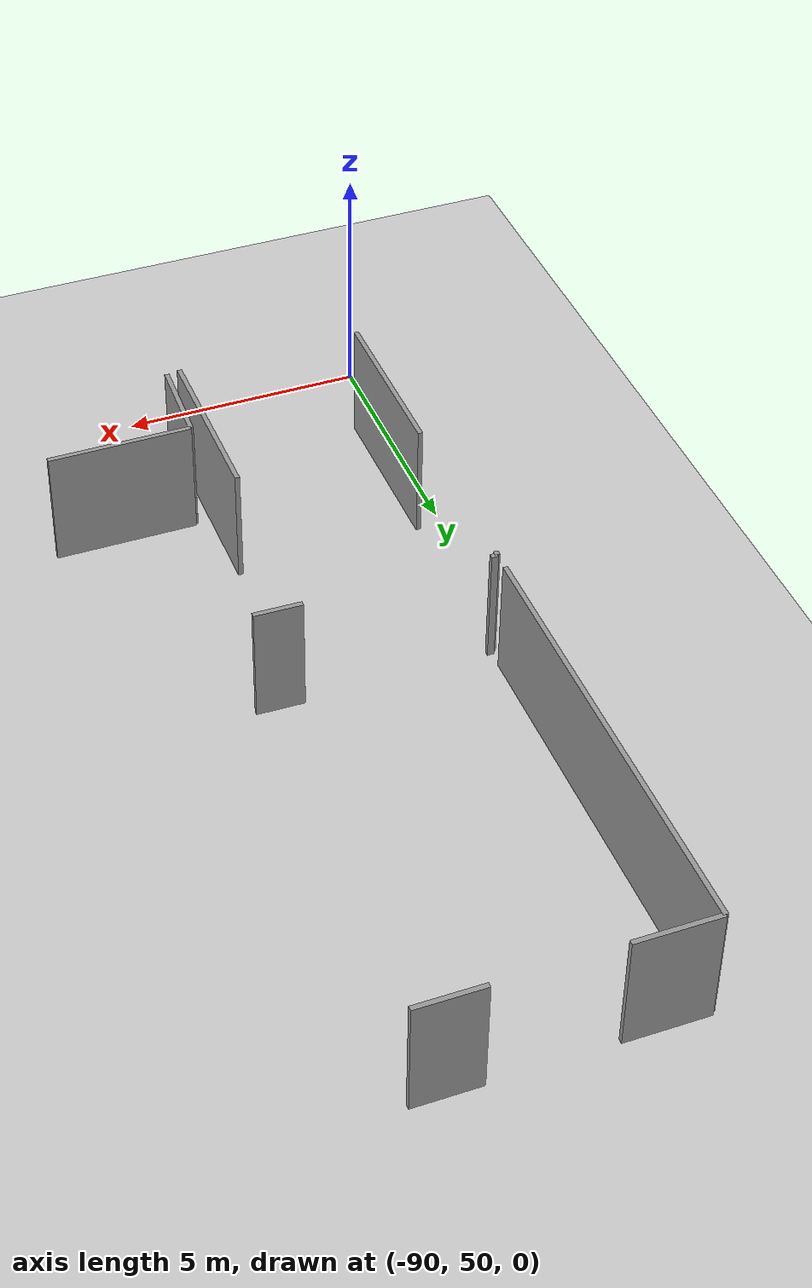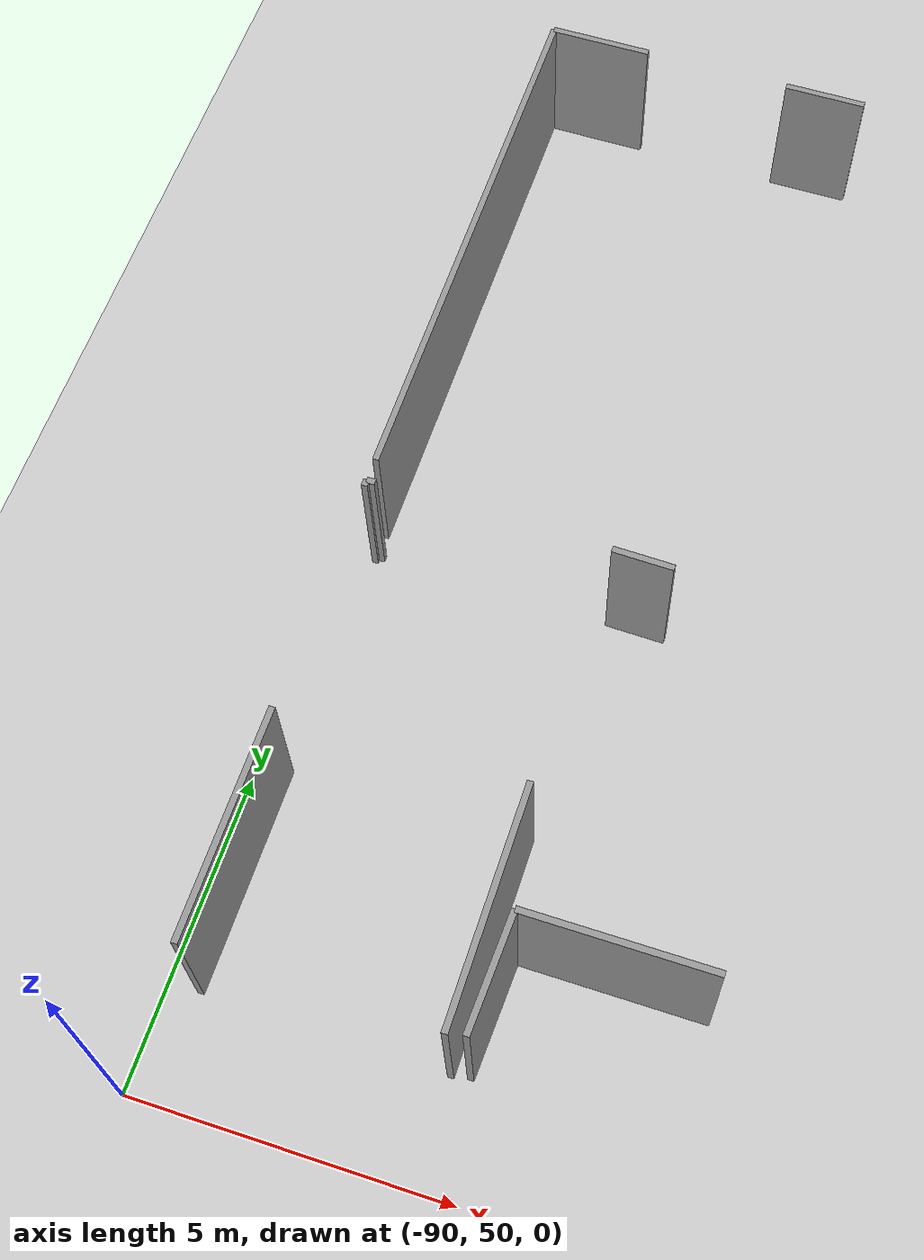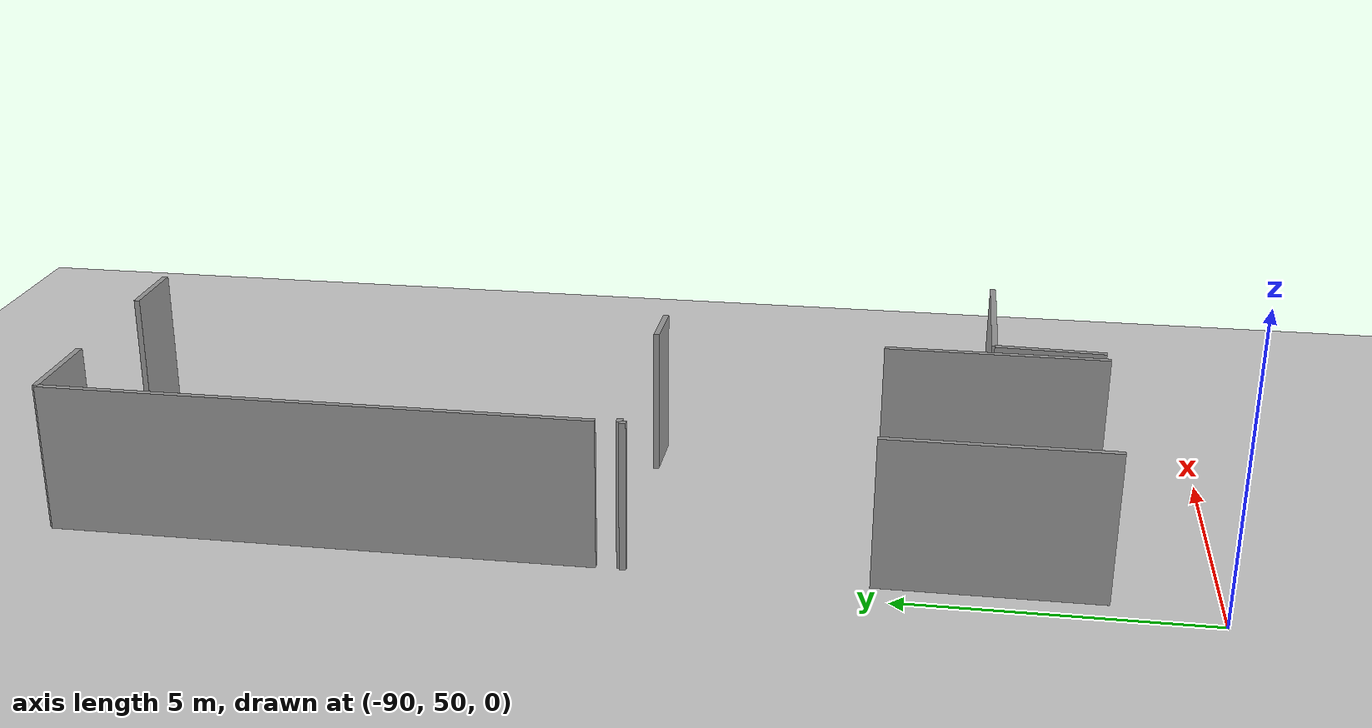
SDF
<sdf version="1.6">
 <world name="default">
  <model name="ground_plane">
   <static>1</static>
   <link name="link">
    <collision name="collision">
     <geometry><plane><normal>0 0 1</normal><size>100 100</size></plane></geometry>
     <surface><friction><ode><mu>100</mu><mu2>50</mu2></ode></friction></surface>
    </collision>
    <visual name="visual">
     <cast_shadows>0</cast_shadows>
     <geometry><plane><normal>0 0 1</normal><size>100 100</size></plane></geometry>
     <material>
      <script><uri>file://media/materials/scripts/gazebo.material</uri><name>Gazebo/Grey</name></script>
     </material>
    </visual>
   </link>
  </model>
  <model name="0510035520_A_40_1_103">
   <static>1</static>
   <link name="Wall_17">
    <collision name="Wall_17_Collision">
     <geometry><box><size>1.68755274395 0.1 2.5</size></box></geometry>
     <pose>0.843776371977 0 1.25 0 0 0</pose>
    </collision>
    <visual name="Wall_17_Visual">
     <pose>0.843776371977 0 1.25 0 0 0</pose>
     <geometry><box><size>1.68755274395 0.1 2.5</size></box></geometry>
     <material>
      <script><uri>file://media/materials/scripts/gazebo.material</uri><name>Gazebo/Grey</name></script>
      <ambient>1 1 1 1</ambient>
     </material>
    </visual>
    <pose>22.7115310182 -0.0 0 0 0 0.0</pose>
   </link>
   <link name="Wall_18">
    <collision name="Wall_18_Collision">
     <geometry><box><size>1.35278329452 0.1 2.5</size></box></geometry>
     <pose>0.676391647261 0 1.25 0 0 0</pose>
    </collision>
    <visual name="Wall_18_Visual">
     <pose>0.676391647261 0 1.25 0 0 0</pose>
     <geometry><box><size>1.35278329452 0.1 2.5</size></box></geometry>
     <material>
      <script><uri>file://media/materials/scripts/gazebo.material</uri><name>Gazebo/Grey</name></script>
      <ambient>1 1 1 1</ambient>
     </material>
    </visual>
    <pose>26.8318094428 -0.0 0 0 0 0.0</pose>
   </link>
   <link name="Wall_37">
    <collision name="Wall_37_Collision">
     <geometry><box><size>9.05273444052 0.1 2.5</size></box></geometry>
     <pose>4.52636722026 0 1.25 0 0 0</pose>
    </collision>
    <visual name="Wall_37_Visual">
     <pose>4.52636722026 0 1.25 0 0 0</pose>
     <geometry><box><size>9.05273444052 0.1 2.5</size></box></geometry>
     <material>
      <script><uri>file://media/materials/scripts/gazebo.material</uri><name>Gazebo/Grey</name></script>
      <ambient>1 1 1 1</ambient>
     </material>
    </visual>
    <pose>22.7117848237 -9.05273443696 0 0 0 1.57082436313</pose>
   </link>
   <link name="Wall_92">
    <collision name="Wall_92_Collision">
     <geometry><box><size>2.93602197956 0.1 2.5</size></box></geometry>
     <pose>1.46801098978 0 1.25 0 0 0</pose>
    </collision>
    <visual name="Wall_92_Visual">
     <pose>1.46801098978 0 1.25 0 0 0</pose>
     <geometry><box><size>2.93602197956 0.1 2.5</size></box></geometry>
     <material>
      <script><uri>file://media/materials/scripts/gazebo.material</uri><name>Gazebo/Grey</name></script>
      <ambient>1 1 1 1</ambient>
     </material>
    </visual>
    <pose>26.9023673708 -15.1070107423 0 0 0 0.0</pose>
   </link>
   <link name="Wall_96">
    <collision name="Wall_96_Collision">
     <geometry><box><size>1.83818873709 0.1 2.5</size></box></geometry>
     <pose>0.919094368547 0 1.25 0 0 0</pose>
    </collision>
    <visual name="Wall_96_Visual">
     <pose>0.919094368547 0 1.25 0 0 0</pose>
     <geometry><box><size>1.83818873709 0.1 2.5</size></box></geometry>
     <material>
      <script><uri>file://media/materials/scripts/gazebo.material</uri><name>Gazebo/Grey</name></script>
      <ambient>1 1 1 1</ambient>
     </material>
    </visual>
    <pose>26.8244490834 -16.9435473125 0 0 0 1.52839500069</pose>
   </link>
   <link name="Wall_116">
    <collision name="Wall_116_Collision">
     <geometry><box><size>3.70987493734 0.1 2.5</size></box></geometry>
     <pose>1.85493746867 0 1.25 0 0 0</pose>
    </collision>
    <visual name="Wall_116_Visual">
     <pose>1.85493746867 0 1.25 0 0 0</pose>
     <geometry><box><size>3.70987493734 0.1 2.5</size></box></geometry>
     <material>
      <script><uri>file://media/materials/scripts/gazebo.material</uri><name>Gazebo/Grey</name></script>
      <ambient>1 1 1 1</ambient>
     </material>
    </visual>
    <pose>26.5422173717 -13.2874791404 0 0 0 -1.57079632679</pose>
   </link>
   <link name="Wall_122">
    <collision name="Wall_122_Collision">
     <geometry><box><size>3.6200277917 0.1 2.5</size></box></geometry>
     <pose>1.81001389585 0 1.25 0 0 0</pose>
    </collision>
    <visual name="Wall_122_Visual">
     <pose>1.81001389585 0 1.25 0 0 0</pose>
     <geometry><box><size>3.6200277917 0.1 2.5</size></box></geometry>
     <material>
      <script><uri>file://media/materials/scripts/gazebo.material</uri><name>Gazebo/Grey</name></script>
      <ambient>1 1 1 1</ambient>
     </material>
    </visual>
    <pose>22.7046782698 -16.9577604203 0 0 0 1.57079632679</pose>
   </link>
   <link name="Wall_123">
    <collision name="Wall_123_Collision">
     <geometry><box><size>0.10964397434 0.1 2.5</size></box></geometry>
     <pose>0.0548219871701 0 1.25 0 0 0</pose>
    </collision>
    <visual name="Wall_123_Visual">
     <pose>0.0548219871701 0 1.25 0 0 0</pose>
     <geometry><box><size>0.10964397434 0.1 2.5</size></box></geometry>
     <material>
      <script><uri>file://media/materials/scripts/gazebo.material</uri><name>Gazebo/Grey</name></script>
      <ambient>1 1 1 1</ambient>
     </material>
    </visual>
    <pose>22.7046782698 -9.53598010165 0 0 0 1.57079632679</pose>
   </link>
   <link name="Wall_124">
    <collision name="Wall_124_Collision">
     <geometry><box><size>0.140100633879 0.1 2.5</size></box></geometry>
     <pose>0.0700503169396 0 1.25 0 0 0</pose>
    </collision>
    <visual name="Wall_124_Visual">
     <pose>0.0700503169396 0 1.25 0 0 0</pose>
     <geometry><box><size>0.140100633879 0.1 2.5</size></box></geometry>
     <material>
      <script><uri>file://media/materials/scripts/gazebo.material</uri><name>Gazebo/Grey</name></script>
      <ambient>1 1 1 1</ambient>
     </material>
    </visual>
    <pose>22.7046782698 -9.42633612731 0 0 0 0.0</pose>
   </link>
   <link name="Wall_125">
    <collision name="Wall_125_Collision">
     <geometry><box><size>0.97054388762 0.1 2.5</size></box></geometry>
     <pose>0.48527194381 0 1.25 0 0 0</pose>
    </collision>
    <visual name="Wall_125_Visual">
     <pose>0.48527194381 0 1.25 0 0 0</pose>
     <geometry><box><size>0.97054388762 0.1 2.5</size></box></geometry>
     <material>
      <script><uri>file://media/materials/scripts/gazebo.material</uri><name>Gazebo/Grey</name></script>
      <ambient>1 1 1 1</ambient>
     </material>
    </visual>
    <pose>26.5708973928 -9.42633612731 0 0 0 -0.0224916290367</pose>
   </link>
   <pose>-112.2 68.6448144365 0 0 0 0</pose>
  </model>
 </world>
</sdf>
